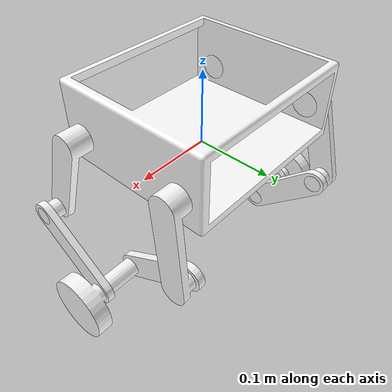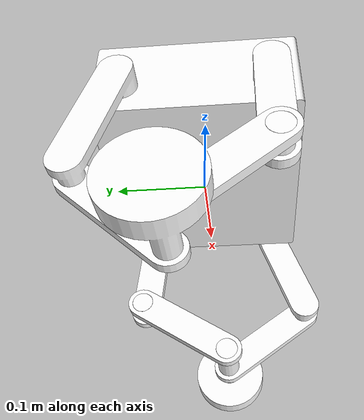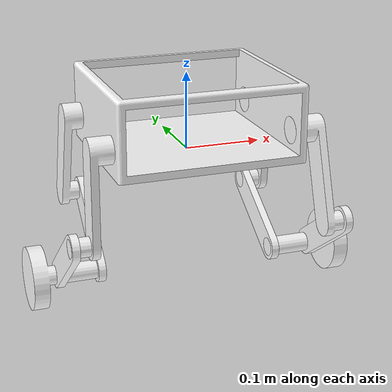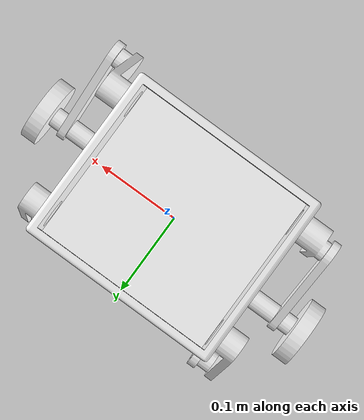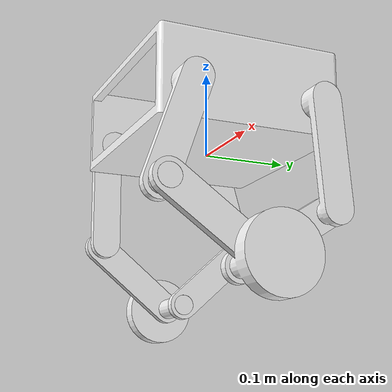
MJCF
<mujoco model="Legbox_skeleton">
  <compiler angle="radian" meshdir="meshes/"/>

  <default>
    <motor ctrlrange="-1 1" ctrllimited="true"/>
    <joint actuatorfrclimited="true" type="hinge"/>
  </default>

  <asset>
    <mesh name="BOX" file="BOX.STL"/>
    <mesh name="LL1" file="LL1.STL"/>
    <mesh name="LL2" file="LL2.STL"/>
    <mesh name="LL3" file="LL3.STL"/>
    <mesh name="LL4" file="LL4.STL"/>
    <mesh name="LR1" file="LR1.STL"/>
    <mesh name="LR2" file="LR2.STL"/>
    <mesh name="LR3" file="LR3.STL"/>
    <mesh name="LR4" file="LR4.STL"/>
    <mesh name="WL" file="WL.STL"/>
    <mesh name="WR" file="WR.STL"/>
  </asset>

  <worldbody>
    <body name="BOX">
      <inertial pos="0.0000004 -0.0000004 0.029163" mass="0.88729" diaginertia="0.004439 0.0081058 0.010584"/>
      <freejoint name="BOX"/>
      <geom pos="0 0 0" contype="0" conaffinity="0" group="1" density="0" rgba="1 1 1 1" type="mesh" mesh="BOX"/>
      <body name="LL1" pos="-0.15046 -0.075 0.034413" quat="0.4984476 0.5015476 0.5015458 -0.4984494">
        <inertial pos="0.049268 0.0089082 0" mass="0.092756" diaginertia="0.0000248 0.0002422 0.0002516"/>
        <joint name="LL1" pos="0 0 0" type="hinge" axis="0 1 0" range="-0.7854 0.7854" actuatorfrcrange="-91.0035 91.0035"/>
        <geom pos="0 0 0" contype="0" conaffinity="0" group="1" density="0" rgba="1 1 1 1" type="mesh" mesh="LL1"/>
        <body name="LL3" pos="0.12 -0.015 0" quat="-0.0000033 0.9042869 -0.0000016 -0.4269254">
          <inertial pos="0.06 0.005 0" mass="0.041804" diaginertia="0.000005 0.0000633 0.000059"/>
          <joint name="LL3" pos="0 0 0" type="hinge" axis="0 -1 0" range="-1.5708 1.5708" actuatorfrcrange="-91.0035 91.0035"/>
          <geom pos="0 0 0" contype="0" conaffinity="0" group="1" density="0" rgba="1 1 1 1" type="mesh" mesh="LL3"/>
          <body name="WL" pos="0.12 -0.055 0" quat="-0.3157434 -0.0000046 0.9488446 -0.0000046">
            <inertial pos="0 0.076621 0" mass="0.14676" diaginertia="0.0001439 0.000095 0.0001439"/>
            <joint name="WL" pos="0 0 0" type="hinge" axis="0 1 0" actuatorfrcrange="-91.0035 91.0035"/>
            <geom pos="0 0 0" contype="0" conaffinity="0" group="1" density="0" rgba="1 1 1 1" type="mesh" mesh="WL"/>
          </body>
        </body>
      </body>
      <body name="LL2" pos="-0.14546 0.075 0.034413" quat="0.4256468 0.5646453 0.5646442 -0.4256494">
        <inertial pos="0.051963 0.012228 0" mass="0.087946" diaginertia="0.0000162 0.0002291 0.0002306"/>
        <joint name="LL2" pos="0 0 0" type="hinge" axis="0 1 0" range="-0.7854 0.7854" actuatorfrcrange="-91.0035 91.0035"/>
        <geom pos="0 0 0" contype="0" conaffinity="0" group="1" density="0" rgba="1 1 1 1" type="mesh" mesh="LL2"/>
        <body name="LL4" pos="0.12 0.025 0" quat="0.8481834 0 -0.5297027 0">
          <inertial pos="0.06 0.005 0" mass="0.041804" diaginertia="0.000005 0.0000633 0.000059"/>
          <joint name="LL4" pos="0 0 0" type="hinge" axis="0 1 0" range="-0.7854 0.7854" actuatorfrcrange="-91.0035 91.0035"/>
          <geom pos="0 0 0" contype="0" conaffinity="0" group="1" density="0" rgba="1 1 1 1" type="mesh" mesh="LL4"/>
        </body>
      </body>
      <body name="LR1" pos="0.15046 -0.075 0.034413" quat="-0.4105978 0.5756812 -0.5756864 -0.410592">
        <inertial pos="0.049268 0.0089082 0" mass="0.092756" diaginertia="0.0000248 0.0002422 0.0002516"/>
        <joint name="LR1" pos="0 0 0" type="hinge" axis="0 -1 0" range="-0.7854 0.7854" actuatorfrcrange="-91.0035 91.0035"/>
        <geom pos="0 0 0" contype="0" conaffinity="0" group="1" density="0" rgba="1 1 1 1" type="mesh" mesh="LR1"/>
        <body name="LR3" pos="0.12 -0.015 0" quat="-0.0000029 0.8010494 0.0000022 0.5985982">
          <inertial pos="0.06 0.005 0" mass="0.041804" diaginertia="0.000005 0.0000633 0.000059"/>
          <joint name="LR3" pos="0 0 0" type="hinge" axis="0 1 0" range="-1.5708 1.5708" actuatorfrcrange="-91.0035 91.0035"/>
          <geom pos="0 0 0" contype="0" conaffinity="0" group="1" density="0" rgba="1 1 1 1" type="mesh" mesh="LR3"/>
          <body name="WR" pos="0.12 -0.055 0" quat="0.0470167 -0.0000035 0.9988941 -0.0000035">
            <inertial pos="0 0.076621 0" mass="0.14676" diaginertia="0.0001439 0.000095 0.0001439"/>
            <joint name="WR" pos="0 0 0" type="hinge" axis="0 1 0" actuatorfrcrange="-91.0035 91.0035"/>
            <geom pos="0 0 0" contype="0" conaffinity="0" group="1" density="0" rgba="1 1 1 1" type="mesh" mesh="WR"/>
          </body>
        </body>
      </body>
      <body name="LR2" pos="0.14546 0.075 0.034413" quat="0.5213639 -0.4776814 0.4776797 0.5213658">
        <inertial pos="0.051963 0.012228 0" mass="0.087946" diaginertia="0.0000162 0.0002291 0.0002306"/>
        <joint name="LR2" pos="0 0 0" type="hinge" axis="0 -1 0" range="-0.7854 0.7854" actuatorfrcrange="-91.0035 91.0035"/>
        <geom pos="0 0 0" contype="0" conaffinity="0" group="1" density="0" rgba="1 1 1 1" type="mesh" mesh="LR2"/>
        <body name="LR4" pos="0.12 0.025 0" quat="0.8524722 0 0.5227725 0">
          <inertial pos="0.06 0.005 0" mass="0.041804" diaginertia="0.000005 0.0000633 0.000059"/>
          <joint name="LR4" pos="0 0 0" type="hinge" axis="0 -1 0" range="-0.7854 0.7854" actuatorfrcrange="-91.0035 91.0035"/>
          <geom pos="0 0 0" contype="0" conaffinity="0" group="1" density="0" rgba="1 1 1 1" type="mesh" mesh="LR4"/>
        </body>
      </body>
    </body>
  </worldbody>

  <actuator>
    <motor name="LL1" joint="LL1"/>
    <motor name="LL2" joint="LL2"/>
    <motor name="LL3" joint="LL3"/>
    <motor name="LL4" joint="LL4"/>
    <motor name="LR1" joint="LR1"/>
    <motor name="LR2" joint="LR2"/>
    <motor name="LR3" joint="LR3"/>
    <motor name="LR4" joint="LR4"/>
    <motor name="WL" joint="WL"/>
    <motor name="WR" joint="WR"/>
  </actuator>
</mujoco>
